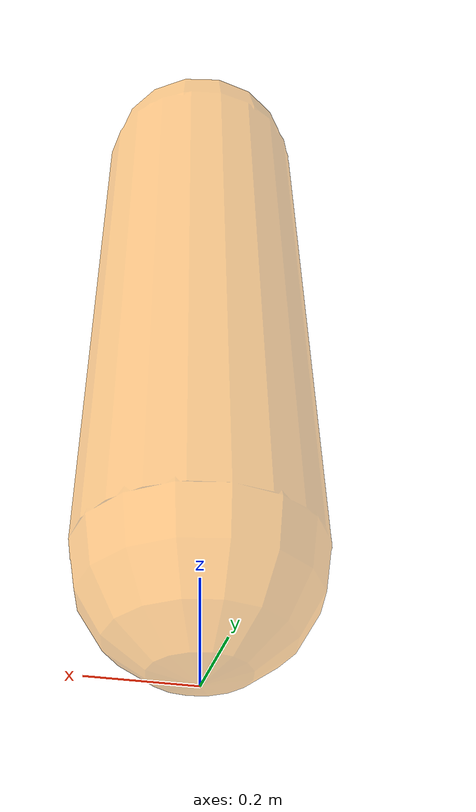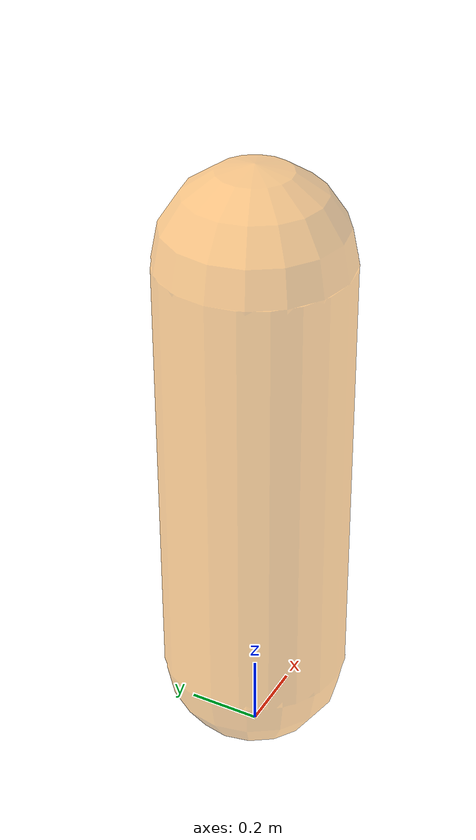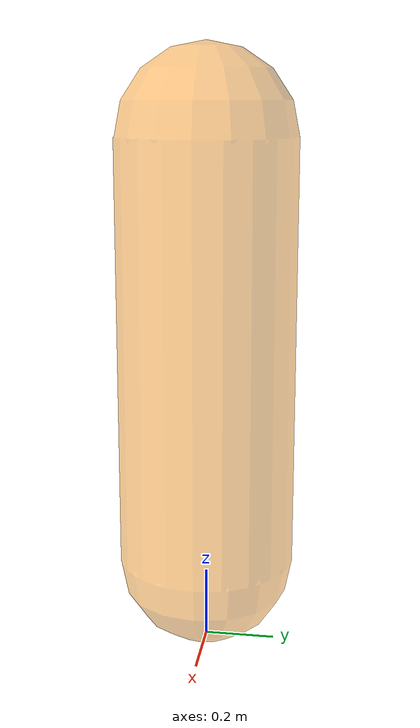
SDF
<?xml version="1.0" ?>
<sdf version="1.9">
  <model name="human_collision_body">
    <static>false</static>
    <link name="body">
      <pose>0 0 0.85 0 0 0</pose>
      <gravity>false</gravity>
      <inertial>
        <mass>70.0</mass>
        <inertia>
          <ixx>5000.0</ixx>
          <iyy>5000.0</iyy>
          <izz>2.19</izz>
          <ixy>0</ixy>
          <ixz>0</ixz>
          <iyz>0</iyz>
        </inertia>
      </inertial>
      <collision name="collision">
        <geometry>
          <capsule>
            <radius>0.25</radius>
            <length>1.2</length>
          </capsule>
        </geometry>
        <surface>
          <friction>
            <ode>
              <mu>0.2</mu>
              <mu2>0.2</mu2>
            </ode>
          </friction>
        </surface>
      </collision>
      <visual name="visual">
        <geometry>
          <capsule>
            <radius>0.25</radius>
            <length>1.2</length>
          </capsule>
        </geometry>
        <material>
          <ambient>1.0 0.55 0.0 1.0</ambient>
          <diffuse>1.0 0.55 0.0 1.0</diffuse>
          <emissive>0.3 0.15 0.0 1.0</emissive>
        </material>
        <transparency>0.55</transparency>
      </visual>
    </link>
    <plugin filename="gz-sim-velocity-control-system"
            name="gz::sim::systems::VelocityControl">
      <topic>/model/human_collision_body/cmd_vel</topic>
    </plugin>
  </model>
</sdf>
